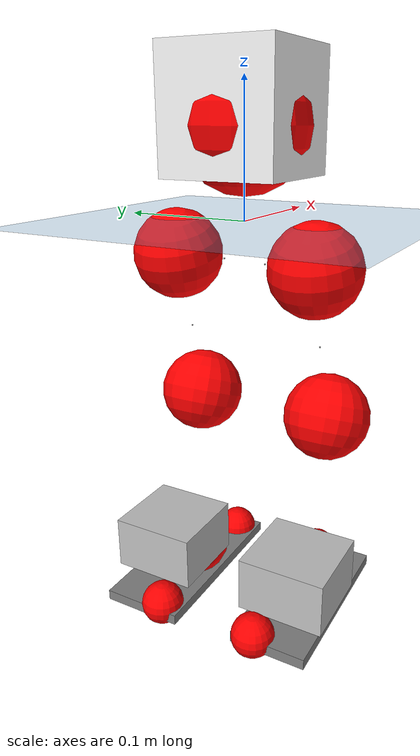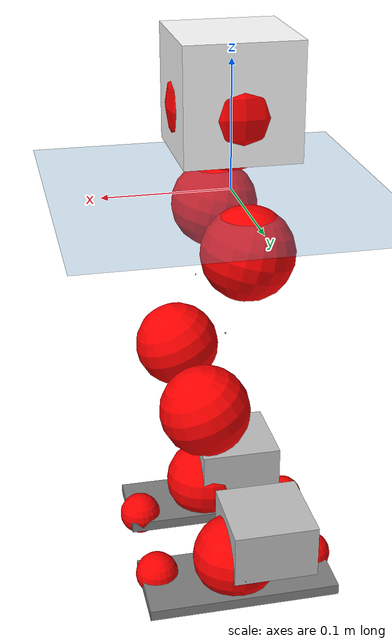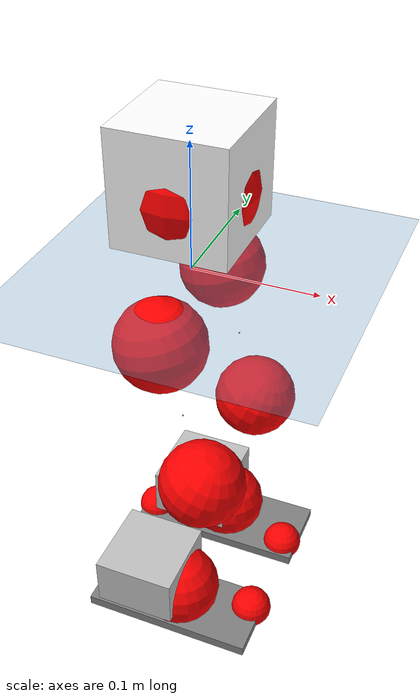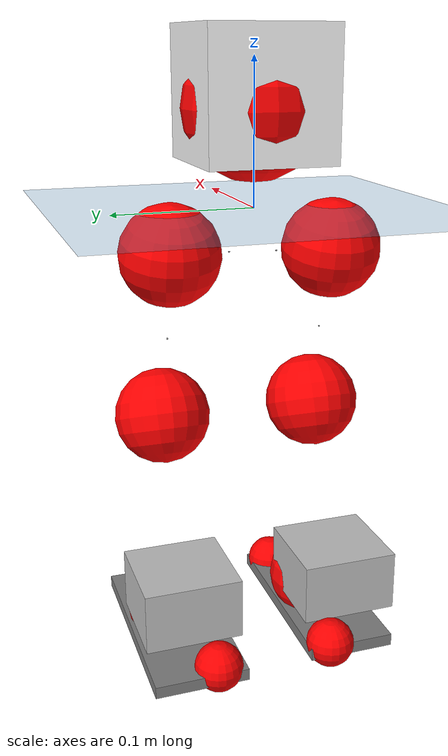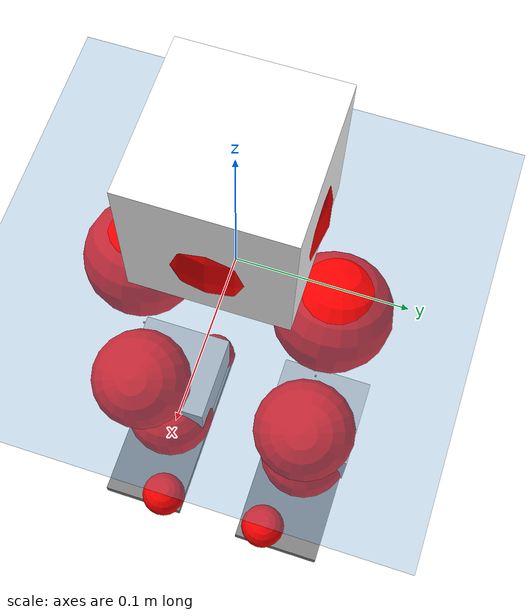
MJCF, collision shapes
<mujoco model="pi_12dof_release_v1">
  <compiler angle="radian" assetdir="assets" balanceinertia="true" inertiafromgeom="false"/>

  <option timestep="0.005" density="1.2" viscosity="2e-05"/>

  <size nkey="1"/>

  <visual>
    <quality shadowsize="8192"/>
    <map shadowclip="0.5"/>
  </visual>

  <default>
    <default class="/">
      <joint armature="0.01" damping="0.01" frictionloss="0.01"/>
      <geom contype="0" conaffinity="0" group="1" solref="-1000 -80"/>
      <site size="0.01 0.005 0.005" group="5"/>
      <general forcelimited="true" biastype="affine" gainprm="20" biasprm="0 -20 -0.5"/>
      <default class="foot">
        <geom size="0.0845 0.036 0.005" type="box" condim="6" group="4" priority="1" friction="0.9 0.2 0.2" solimp="0.015 1 0.005"/>
      </default>
      <default class="reward_collision_sphere">
        <geom group="5" rgba="1 0 0 1"/>
      </default>
    </default>
  </default>

  <asset>
    <texture type="skybox" colorspace="auto" name="//unnamed_texture_0" builtin="gradient" rgb1="0.95 0.95 0.95" rgb2="0.95 0.95 0.95" width="100" height="600"/>
    <texture type="2d" colorspace="auto" name="texplane" builtin="checker" rgb1="0.345 0.575 0.748" rgb2="0.345 0.575 0.748" markrgb="1 1 1" width="512" height="512"/>
    <material name="MatPlane" class="/" texture="texplane" texuniform="true" texrepeat="2 2" specular="0.9"/>
    <mesh name="baselink_1" class="/" file="baselink_1.STL"/>
    <mesh name="r_hip_pitch_link" class="/" file="r_hip_pitch_link.STL"/>
    <mesh name="r_hip_roll_link" class="/" file="r_hip_roll_link.STL"/>
    <mesh name="r_thigh_link" class="/" file="r_thigh_link.STL"/>
    <mesh name="r_calf_link" class="/" file="r_calf_link.STL"/>
    <mesh name="r_ankle_pitch_link" class="/" file="r_ankle_pitch_link.STL"/>
    <mesh name="r_ankle_roll_link" class="/" file="r_ankle_roll_link.STL"/>
    <mesh name="l_hip_pitch_link" class="/" file="l_hip_pitch_link.STL"/>
    <mesh name="l_hip_roll_link" class="/" file="l_hip_roll_link.STL"/>
    <mesh name="l_thigh_link" class="/" file="l_thigh_link.STL"/>
    <mesh name="l_calf_link" class="/" file="l_calf_link.STL"/>
    <mesh name="l_ankle_pitch_link" class="/" file="l_ankle_pitch_link.STL"/>
    <mesh name="l_ankle_roll_link" class="/" file="l_ankle_roll_link.STL"/>
  </asset>

  <worldbody>
    <geom name="floor" class="/" size="100 100 0.125" type="plane" group="0" material="MatPlane"/>
    <light name="toplight_shadow" class="/" pos="0 0 5" dir="0.0990148 0.0990148 -0.990148" type="directional" ambient="0.04 0.04 0.04" diffuse="0.55 0.55 0.55" specular="0.12 0.12 0.12"/>
    <light name="toplight_fill" class="/" pos="0 0 5" dir="0.0990148 0.0990148 -0.990148" type="directional" castshadow="false" ambient="0.04 0.04 0.04" diffuse="0.3 0.3 0.3" specular="0.08 0.08 0.08"/>
    <body name="trunk" pos="0.00108081 0.000255474 0.000836695" quat="1 1.17196e-05 -3.84054e-05 0.000269459">
      <inertial pos="0.00135825 -0.00125537 0.03743" quat="0.693724 0.0105169 0.008568 0.720113" mass="1.47858" diaginertia="0.00872139 0.0021346 0.00293153"/>
      <joint name="//unnamed_joint_0" type="free"/>
      <geom name="//unnamed_geom_1" class="/" type="mesh" density="0" rgba="1 1 1 1" mesh="baselink_1"/>
      <geom name="//unnamed_geom_2" class="/" size="0.0444089 0.0444089 0.0444089" pos="0 0 0.0747708" type="box" rgba="1 1 1 1"/>
      <geom name="//unnamed_geom_3" class="reward_collision_sphere" size="0.0488498" pos="0 0 0.0654244"/>
      <site name="imu" class="/" pos="0.000813829 -0.00458093 0.00186049" size="0.00888179"/>
      <camera name="track" class="/" pos="0 -1.50196 0" quat="0.707107 0.707107 0 0" mode="trackcom"/>
      <camera name="ego_camera" class="/" pos="0.0734193 0 0.168234" quat="-0.5 -0.5 0.5 0.5"/>
      <body name="r_hip_pitch_link" pos="0.000126911 -0.0171373 -0.0314926" quat="0.992177 7.60785e-05 -0.124835 -0.000426172">
        <inertial pos="0.00145727 -0.0418682 0.000219417" quat="-0.0189775 0.705935 -0.02834 0.707455" mass="0.263376" diaginertia="9.94812e-05 2.32833e-05 5.92043e-05"/>
        <joint name="r_hip_pitch_joint" class="/" pos="0 0 0" axis="-0.0010095 -0.999999 0.000527718" stiffness="0.00351658" range="-1.73041 1.25768" armature="0.0088667" damping="0.0128269" frictionloss="0.00865283"/>
        <geom name="//unnamed_geom_4" class="/" type="mesh" density="0" rgba="0.75294 0.75294 0.75294 1" mesh="r_hip_pitch_link"/>
        <geom name="//unnamed_geom_5" class="/" size="0.000444089 0.000444089 0.000444089" type="box" rgba="0.75294 0.75294 0.75294 1"/>
        <body name="r_hip_roll_link" pos="-0.000870897 -0.0409852 -0.000397236" quat="1 -6.75995e-05 7.37793e-05 6.51703e-05">
          <inertial pos="-0.00155345 0.000508519 -0.0582137" quat="0.705804 -0.0792703 -0.0827334 0.699079" mass="0.275137" diaginertia="0.000299211 6.67007e-05 9.36447e-05"/>
          <joint name="r_hip_roll_joint" class="/" pos="0 0 0" axis="-0.999997 0.00120694 0.00211015" range="-0.125643 0.508852" armature="0.009163" damping="0.000523679" frictionloss="0.00884318"/>
          <geom name="//unnamed_geom_6" class="/" type="mesh" density="0" rgba="0.75294 0.75294 0.75294 1" mesh="r_hip_roll_link"/>
          <geom name="//unnamed_geom_7" class="/" size="0.000444089 0.000444089 0.000444089" type="box" rgba="0.75294 0.75294 0.75294 1"/>
          <geom name="//unnamed_geom_8" class="reward_collision_sphere" size="0.0355272"/>
          <body name="r_thigh_link" pos="6.48621e-05 0.000571747 -0.0642405" quat="1 0.000246862 -0.000309331 -1.97018e-05">
            <inertial pos="0.000666089 0.000477376 -0.0451828" quat="0.738608 0.674132 -0.00134084 0.00135089" mass="0.0790279" diaginertia="0.000115297 2.27157e-05 4.19203e-05"/>
            <joint name="r_thigh_joint" class="/" pos="0 0 0" axis="-5.39394e-05 -0.000295317 -1" range="-0.295786 0.576255" armature="0.00923487" damping="0.00477951" frictionloss="0.00838887"/>
            <geom name="//unnamed_geom_9" class="/" type="mesh" density="0" rgba="0.75294 0.75294 0.75294 1" mesh="r_thigh_link"/>
            <geom name="//unnamed_geom_10" class="/" size="0.000444089 0.000444089 0.000444089" type="box" rgba="0.75294 0.75294 0.75294 1"/>
            <body name="r_calf_link" pos="6.67137e-05 -0.00183018 -0.066227" quat="0.94761 -0.000102734 0.31943 5.83116e-05">
              <inertial pos="-0.00113268 -0.000744003 -0.0656004" quat="0.999983 -0.00345703 7.83195e-05 0.00462396" mass="0.571109" diaginertia="0.00322046 0.000845743 0.000127176"/>
              <joint name="r_calf_joint" class="/" pos="0 0 0" axis="0.0021481 -0.999994 0.00281096" range="-1.63283 0.646083" armature="0.00873422" damping="0.0103742" frictionloss="0.00868942"/>
              <geom name="//unnamed_geom_11" class="/" type="mesh" density="0" rgba="0.75294 0.75294 0.75294 1" mesh="r_calf_link"/>
              <geom name="//unnamed_geom_12" class="/" size="0.000444089 0.000444089 0.000444089" type="box" rgba="0.75294 0.75294 0.75294 1"/>
              <geom name="//unnamed_geom_13" class="reward_collision_sphere" size="0.0355272"/>
              <body name="r_ankle_pitch_link" pos="0.000422495 0.000306667 -0.130616" quat="0.980071 1.50386e-05 -0.198649 9.71652e-06">
                <inertial pos="0.00386299 0.0031404 -0.00031163" quat="0.000833102 0.704502 -0.00175152 0.7097" mass="0.123263" diaginertia="0.000279833 5.36667e-05 8.6277e-05"/>
                <joint name="r_ankle_pitch_joint" class="/" pos="0 0 0" axis="0.00176939 -0.999998 -0.000211106" range="-1.31374 0.503411" armature="0.00876694" damping="0.00877506" frictionloss="0.00847719"/>
                <geom name="//unnamed_geom_14" class="/" type="mesh" density="0" rgba="0.75294 0.75294 0.75294 1" mesh="r_ankle_pitch_link"/>
                <geom name="//unnamed_geom_15" class="/" size="0.034639 0.0355272 0.0222045" type="box" rgba="0.75294 0.75294 0.75294 1"/>
                <body name="r_ankle_roll_link" pos="0.0753085 0.00364518 0.000262359" quat="1 3.99421e-06 8.11266e-05 -4.18242e-05">
                  <inertial pos="-0.0235842 -0.000145238 -0.013457" quat="0.560541 0.430907 0.432846 0.559247" mass="0.364322" diaginertia="0.00101502 0.000246029 0.000203272"/>
                  <joint name="r_ankle_roll_joint" class="/" pos="0 0 0" axis="-0.999985 -0.00541873 0.000809523" range="-0.161874 0.144812" armature="0.00902095" damping="0.00320455" frictionloss="0.00881109"/>
                  <geom name="//unnamed_geom_16" class="/" type="mesh" density="0" rgba="0.75294 0.75294 0.75294 1" mesh="r_ankle_roll_link"/>
                  <geom name="//unnamed_geom_17" class="/" type="mesh" rgba="0.75294 0.75294 0.75294 1" mesh="r_ankle_roll_link"/>
                  <geom name="right_foot" class="foot" size="0.0742814 0.0319683 0.00450607" pos="-0.0499251 0 -0.0411239"/>
                  <geom name="//unnamed_geom_19" class="reward_collision_sphere" size="0.0355272" pos="-0.0489462 0 -0.0186927"/>
                  <geom name="//unnamed_geom_20" class="reward_collision_sphere" size="0.0177636" pos="0.0146839 0.0150196 -0.0373854"/>
                  <geom name="//unnamed_geom_21" class="reward_collision_sphere" size="0.0177636" pos="-0.117471 0.0150196 -0.0373854"/>
                  <site name="right_foot" class="foot" pos="-0.0499251 0 -0.0411239" size="0.00888179"/>
                </body>
              </body>
            </body>
          </body>
        </body>
      </body>
      <body name="l_hip_pitch_link" pos="0.000115664 0.0174835 -0.0302404" quat="0.992181 2.22536e-05 -0.12481 -1.81127e-05">
        <inertial pos="0.000401098 0.040971 0.000473709" quat="-0.0437829 0.707504 0.0285123 0.704775" mass="0.276825" diaginertia="0.000115898 2.52629e-05 7.26183e-05"/>
        <joint name="l_hip_pitch_joint" class="/" pos="0 0 0" axis="-0.00153325 0.999995 -0.00279358" range="-1.25554 1.75063" armature="0.00884644" damping="0.00735204" frictionloss="0.00883494"/>
        <geom name="//unnamed_geom_22" class="/" type="mesh" density="0" rgba="0.75294 0.75294 0.75294 1" mesh="l_hip_pitch_link"/>
        <geom name="//unnamed_geom_23" class="/" size="0.000444089 0.000444089 0.000444089" type="box" rgba="0.75294 0.75294 0.75294 1"/>
        <body name="l_hip_roll_link" pos="0.000182668 0.0418974 0.00027498" quat="1 7.05376e-05 -7.41278e-06 0.000106839">
          <inertial pos="-0.00114457 -0.000243775 -0.0568201" quat="0.699882 -0.075728 -0.0794078 0.70578" mass="0.275404" diaginertia="0.000299093 6.68397e-05 9.09373e-05"/>
          <joint name="l_hip_roll_joint" class="/" pos="0 0 0" axis="-0.999999 -0.000153395 -0.0010079" range="-0.505324 0.110065" armature="0.00904114" damping="0.00533055" frictionloss="0.00902469"/>
          <geom name="//unnamed_geom_24" class="/" type="mesh" density="0" rgba="0.75294 0.75294 0.75294 1" mesh="l_hip_roll_link"/>
          <geom name="//unnamed_geom_25" class="/" size="0.000444089 0.000444089 0.000444089" type="box" rgba="0.75294 0.75294 0.75294 1"/>
          <geom name="//unnamed_geom_26" class="reward_collision_sphere" size="0.0355272"/>
          <body name="l_thigh_link" pos="0.000205784 -0.000673291 -0.0656537" quat="1 5.61947e-05 -0.000186854 -0.000168104">
            <inertial pos="0.000641147 -0.000573727 -0.044562" quat="0.67558 0.737272 -0.00437914 -0.00121668" mass="0.0786963" diaginertia="0.000113298 2.2457e-05 4.06796e-05"/>
            <joint name="l_thigh_joint" class="/" pos="0 0 0" axis="0.000975528 -0.00234104 -0.999997" range="-0.605399 0.283723" armature="0.00851744" damping="0.000520095" frictionloss="0.00847761"/>
            <geom name="//unnamed_geom_27" class="/" type="mesh" density="0" rgba="0.75294 0.75294 0.75294 1" mesh="l_thigh_link"/>
            <geom name="//unnamed_geom_28" class="/" size="0.000444089 0.000444089 0.000444089" type="box" rgba="0.75294 0.75294 0.75294 1"/>
            <body name="l_calf_link" pos="-0.000258338 0.00128204 -0.0661581" quat="0.947603 -0.000351092 0.319452 0.000157628">
              <inertial pos="0.00112472 0.0016129 -0.0666685" quat="0.999972 0.00568881 -0.00217478 0.00427219" mass="0.568695" diaginertia="0.00315586 0.00083665 0.000124486"/>
              <joint name="l_calf_joint" class="/" pos="0 0 0" axis="-0.00171018 0.999992 -0.00374884" stiffness="0.0033583" range="-0.657067 1.67057" armature="0.00890076" damping="0.0057297" frictionloss="0.00887902"/>
              <geom name="//unnamed_geom_29" class="/" type="mesh" density="0" rgba="0.75294 0.75294 0.75294 1" mesh="l_calf_link"/>
              <geom name="//unnamed_geom_30" class="/" size="0.000444089 0.000444089 0.000444089" type="box" rgba="0.75294 0.75294 0.75294 1"/>
              <geom name="//unnamed_geom_31" class="reward_collision_sphere" size="0.0355272"/>
              <body name="l_ankle_pitch_link" pos="0.000566327 0.000987768 -0.131923" quat="0.980065 8.94886e-06 -0.198676 2.32054e-05">
                <inertial pos="0.00438638 -0.000810285 -6.35033e-05" quat="-0.00275846 0.70763 0.00274085 0.706573" mass="0.123144" diaginertia="0.00027483 5.24368e-05 8.52567e-05"/>
                <joint name="l_ankle_pitch_joint" class="/" pos="0 0 0" axis="0.000695792 0.999999 -0.000950647" stiffness="0.000670332" range="-0.503212 1.30467" armature="0.00890389" damping="0.00853979" frictionloss="0.00854695"/>
                <geom name="//unnamed_geom_32" class="/" type="mesh" density="0" rgba="0.75294 0.75294 0.75294 1" mesh="l_ankle_pitch_link"/>
                <geom name="//unnamed_geom_33" class="/" size="0.034639 0.0355272 0.0222045" type="box" rgba="0.75294 0.75294 0.75294 1"/>
                <body name="l_ankle_roll_link" pos="0.0745035 9.5649e-05 -0.000810262" quat="1 2.15438e-05 7.85983e-06 -3.11989e-05">
                  <inertial pos="-0.0237676 -0.000598284 -0.0133245" quat="0.556592 0.432053 0.437015 0.559065" mass="0.365001" diaginertia="0.00101256 0.000246577 0.000201889"/>
                  <joint name="l_ankle_roll_joint" class="/" pos="0 0 0" axis="-0.999996 0.00288707 6.86474e-05" range="-0.152904 0.135715" armature="0.00901153" damping="0.00492218" frictionloss="0.00914802"/>
                  <geom name="//unnamed_geom_34" class="/" type="mesh" density="0" rgba="0.75294 0.75294 0.75294 1" mesh="l_ankle_roll_link"/>
                  <geom name="//unnamed_geom_35" class="/" type="mesh" rgba="0.75294 0.75294 0.75294 1" mesh="l_ankle_roll_link"/>
                  <geom name="left_foot" class="foot" size="0.0785449 0.0342422 0.00436509" pos="-0.0499251 0 -0.0411239"/>
                  <geom name="//unnamed_geom_37" class="reward_collision_sphere" size="0.0355272" pos="-0.0489462 0 -0.0186927"/>
                  <geom name="//unnamed_geom_38" class="reward_collision_sphere" size="0.0177636" pos="0.0146839 -0.0150196 -0.0373854"/>
                  <geom name="//unnamed_geom_39" class="reward_collision_sphere" size="0.0177636" pos="-0.117471 -0.0150196 -0.0373854"/>
                  <site name="left_foot" class="foot" pos="-0.0499251 0 -0.0411239" size="0.00888179"/>
                </body>
              </body>
            </body>
          </body>
        </body>
      </body>
    </body>
  </worldbody>

  <contact>
    <pair class="/" geom1="floor" geom2="right_foot" name="//unnamed_contact_1"/>
    <pair class="/" geom1="floor" geom2="left_foot" name="//unnamed_contact_0"/>
  </contact>

  <actuator>
    <general name="r_hip_pitch_joint" class="/" joint="r_hip_pitch_joint" forcerange="-18.6299 18.6299" gainprm="17.69" biasprm="0 -17.69 -0.433531"/>
    <general name="r_hip_roll_joint" class="/" joint="r_hip_roll_joint" forcerange="-18.0463 18.0463" gainprm="17.69" biasprm="0 -17.69 -0.433531"/>
    <general name="r_thigh_joint" class="/" joint="r_thigh_joint" forcerange="-18.374 18.374" gainprm="17.69" biasprm="0 -17.69 -0.433531"/>
    <general name="r_calf_joint" class="/" joint="r_calf_joint" forcerange="-19.2969 19.2969" gainprm="17.69" biasprm="0 -17.69 -0.433531"/>
    <general name="r_ankle_pitch_joint" class="/" joint="r_ankle_pitch_joint" forcerange="-18.9806 18.9806" gainprm="17.69" biasprm="0 -17.69 -0.433531"/>
    <general name="r_ankle_roll_joint" class="/" joint="r_ankle_roll_joint" forcerange="-18.3468 18.3468" gainprm="17.69" biasprm="0 -17.69 -0.433531"/>
    <general name="l_hip_pitch_joint" class="/" joint="l_hip_pitch_joint" forcerange="-18.6838 18.6838" gainprm="17.69" biasprm="0 -17.69 -0.433531"/>
    <general name="l_hip_roll_joint" class="/" joint="l_hip_roll_joint" forcerange="-19.2897 19.2897" gainprm="17.69" biasprm="0 -17.69 -0.433531"/>
    <general name="l_thigh_joint" class="/" joint="l_thigh_joint" forcerange="-18.4825 18.4825" gainprm="17.69" biasprm="0 -17.69 -0.433531"/>
    <general name="l_calf_joint" class="/" joint="l_calf_joint" forcerange="-18.7712 18.7712" gainprm="17.69" biasprm="0 -17.69 -0.433531"/>
    <general name="l_ankle_pitch_joint" class="/" joint="l_ankle_pitch_joint" forcerange="-18.0091 18.0091" gainprm="17.69" biasprm="0 -17.69 -0.433531"/>
    <general name="l_ankle_roll_joint" class="/" joint="l_ankle_roll_joint" forcerange="-18.4831 18.4831" gainprm="17.69" biasprm="0 -17.69 -0.433531"/>
  </actuator>

  <sensor>
    <gyro site="imu" name="imu_angular_velocity"/>
    <velocimeter site="imu" name="imu_linear_velocity"/>
    <framelinvel objtype="site" objname="left_foot" name="left_foot_global_linear_velocity"/>
    <framelinvel objtype="site" objname="right_foot" name="right_foot_global_linear_velocity"/>
  </sensor>

  <keyframe>
    <key name="home" qpos="0 0 0.291 1 0 0 0 0.4 0 0 -0.8 0.4 0 -0.4 0 0 0.8 -0.4 0"/>
  </keyframe>
</mujoco>
